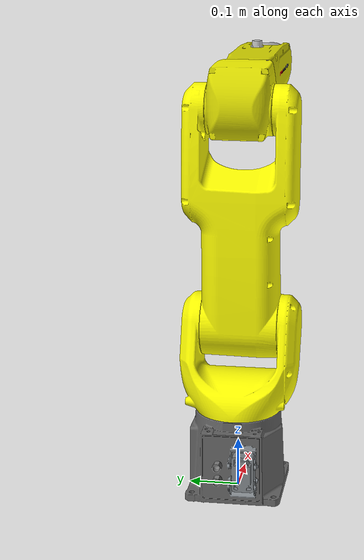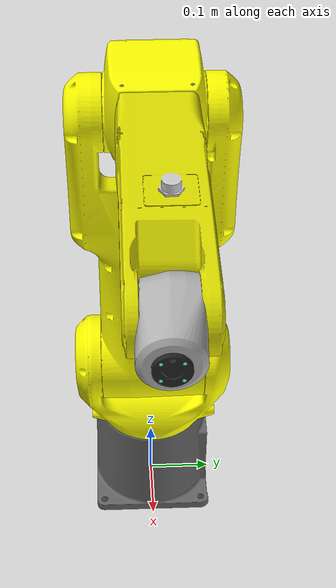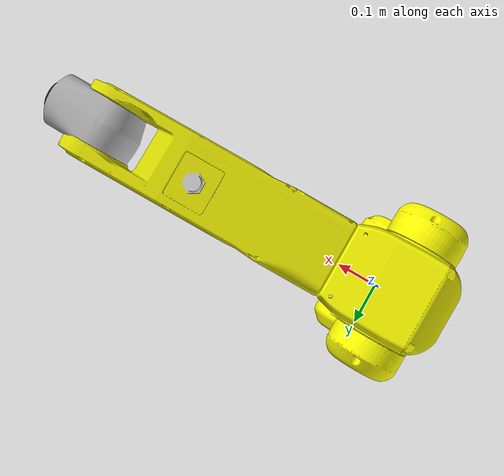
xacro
<?xml version="1.0" ?>
<robot name="lrmate200id7l" xmlns:xacro="http://wiki.ros.org/xacro">
  <xacro:include
    filename="$(find fanuc_lrmate_description)/urdf/lrmate200id7l_urdf_macro.xacro"
  />

  <link name="world" />
  <link name="ee_link" />
  <xacro:lrmate200id7l parent="world" child="ee_link">
    <origin xyz="0 0 0" rpy="0 0 0" />
  </xacro:lrmate200id7l>
</robot>

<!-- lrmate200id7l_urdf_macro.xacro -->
<!--
SPDX-FileCopyrightText: 2025-2026, FANUC America Corporation
SPDX-FileCopyrightText: 2025-2026, FANUC CORPORATION
SPDX-License-Identifier: Apache-2.0
-->
<!-- URDF for LR Mate/7-9D (LR Mate 200iD/7L) -->
<robot xmlns:xacro="http://wiki.ros.org/xacro">
  <xacro:macro
    name="lrmate200id7l"
    params="prefix=''
            parent
            *origin
            child"
  >

    <xacro:property name="j1_lower_limit" value="${radians(-180)}" />
    <xacro:property name="j2_lower_limit" value="${radians(-100)}" />
    <xacro:property name="j3_lower_limit" value="${radians(-70)}" />
    <xacro:property name="j4_lower_limit" value="${radians(-190)}" />
    <xacro:property name="j5_lower_limit" value="${radians(-125)}" />
    <xacro:property name="j6_lower_limit" value="${radians(-360)}" />

    <xacro:property name="j1_upper_limit" value="${radians(180)}" />
    <xacro:property name="j2_upper_limit" value="${radians(145)}" />
    <xacro:property name="j3_upper_limit" value="${radians(213)}" />
    <xacro:property name="j4_upper_limit" value="${radians(190)}" />
    <xacro:property name="j5_upper_limit" value="${radians(125)}" />
    <xacro:property name="j6_upper_limit" value="${radians(360)}" />

    <xacro:property name="j1_effort_limit" value="600" />
    <xacro:property name="j2_effort_limit" value="600" />
    <xacro:property name="j3_effort_limit" value="300" />
    <xacro:property name="j4_effort_limit" value="70" />
    <xacro:property name="j5_effort_limit" value="40" />
    <xacro:property name="j6_effort_limit" value="20" />

    <xacro:property name="j1_velocity_limit" value="${radians(370)}" />
    <xacro:property name="j2_velocity_limit" value="${radians(310)}" />
    <xacro:property name="j3_velocity_limit" value="${radians(410)}" />
    <xacro:property name="j4_velocity_limit" value="${radians(550)}" />
    <xacro:property name="j5_velocity_limit" value="${radians(545)}" />
    <xacro:property name="j6_velocity_limit" value="${radians(1000)}" />

    <!-- links -->
    <link name="${prefix}base_link">
      <visual>
        <origin xyz="0 0 0" rpy="0 0 0" />
        <geometry>
          <mesh
            filename="package://fanuc_lrmate_description/meshes/lrmate200id7l/visual/base.dae"
          />
        </geometry>
      </visual>
      <collision>
        <origin xyz="0 0 0" rpy="0 0 0" />
        <geometry>
          <mesh
            filename="package://fanuc_lrmate_description/meshes/lrmate200id7l/collision/base.stl"
          />
        </geometry>
      </collision>
      <inertial>
        <mass value=" 5.09" />
        <origin xyz="-.0146 -.000342  .0796" />
        <inertia
          ixx=" .0241"
          ixy="-.000552"
          ixz=" .000285"
          iyy=" .0294"
          iyz="-.000117"
          izz=" .0309"
        />
      </inertial>
    </link>

    <link name="${prefix}J1_link">
      <visual>
        <origin xyz="0 0 0" rpy="0 0 0" />
        <geometry>
          <mesh
            filename="package://fanuc_lrmate_description/meshes/lrmate200id7l/visual/j1.dae"
          />
        </geometry>
      </visual>
      <collision>
        <origin xyz="0 0 0" rpy="0 0 0" />
        <geometry>
          <mesh
            filename="package://fanuc_lrmate_description/meshes/lrmate200id7l/collision/j1.stl"
          />
        </geometry>
      </collision>
      <inertial>
        <mass value=" 5.41" />
        <origin xyz=" .0287  .000102 -.0547" />
        <inertia
          ixx=" .0401"
          ixy=" .0000229"
          ixz="-.0053"
          iyy=" .0291"
          iyz=" .000117"
          izz=" .031"
        />
      </inertial>
    </link>

    <link name="${prefix}J2_link">
      <visual>
        <origin xyz="0 0 0" rpy="0 0 0" />
        <geometry>
          <mesh
            filename="package://fanuc_lrmate_description/meshes/lrmate200id7l/visual/j2.dae"
          />
        </geometry>
      </visual>
      <collision>
        <origin xyz="0 0 0" rpy="0 0 0" />
        <geometry>
          <mesh
            filename="package://fanuc_lrmate_description/meshes/lrmate200id7l/collision/j2.stl"
          />
        </geometry>
      </collision>
      <inertial>
        <mass value=" 10.9" />
        <origin xyz="-.00311 -.00124  .217" />
        <inertia
          ixx=" .28"
          ixy=" .0000324"
          ixz=" .000718"
          iyy=" .255"
          iyz="-.00195"
          izz=" .0511"
        />
      </inertial>
    </link>

    <link name="${prefix}J3_link">
      <visual>
        <origin xyz="0 0 0" rpy="0 0 0" />
        <geometry>
          <mesh
            filename="package://fanuc_lrmate_description/meshes/lrmate200id7l/visual/j3.dae"
          />
        </geometry>
      </visual>
      <collision>
        <origin xyz="0 0 0" rpy="0 0 0" />
        <geometry>
          <mesh
            filename="package://fanuc_lrmate_description/meshes/lrmate200id7l/collision/j3.stl"
          />
        </geometry>
      </collision>
      <inertial>
        <mass value=" 2.07" />
        <origin xyz=" .00887 -.0000626  .0171" />
        <inertia
          ixx=" .00562"
          ixy="-.0000442"
          ixz="-.000598"
          iyy=" .0064"
          iyz="-.0000443"
          izz=" .00643"
        />
      </inertial>
    </link>

    <link name="${prefix}J4_link">
      <visual>
        <origin xyz="0 0 0" rpy="0 0 0" />
        <geometry>
          <mesh
            filename="package://fanuc_lrmate_description/meshes/lrmate200id7l/visual/j4.dae"
          />
        </geometry>
      </visual>
      <collision>
        <origin xyz="0 0 0" rpy="0 0 0" />
        <geometry>
          <mesh
            filename="package://fanuc_lrmate_description/meshes/lrmate200id7l/collision/j4.stl"
          />
        </geometry>
      </collision>
      <inertial>
        <mass value=" 3.07" />
        <origin xyz=" .266  .00354  .00226" />
        <inertia
          ixx=" .00511"
          ixy="-.00000922"
          ixz=" .0000312"
          iyy=" .0347"
          iyz="-.0000096"
          izz=" .0346"
        />
      </inertial>
    </link>

    <link name="${prefix}J5_link">
      <visual>
        <origin xyz="0 0 0" rpy="0 0 0" />
        <geometry>
          <mesh
            filename="package://fanuc_lrmate_description/meshes/lrmate200id7l/visual/j5.dae"
          />
        </geometry>
      </visual>
      <collision>
        <origin xyz="0 0 0" rpy="0 0 0" />
        <geometry>
          <mesh
            filename="package://fanuc_lrmate_description/meshes/lrmate200id7l/collision/j5.stl"
          />
        </geometry>
      </collision>
      <inertial>
        <mass value=" .428" />
        <origin xyz=" .0177  .0025 -.00000419" />
        <inertia
          ixx=" .000326"
          ixy=" .0000179"
          ixz="-.0000000201"
          iyy=" .000578"
          iyz="-.0000000165"
          izz=" .000542"
        />
      </inertial>
    </link>

    <link name="${prefix}J6_link">
      <visual>
        <origin xyz="0 0 0" rpy="0 0 0" />
        <geometry>
          <mesh
            filename="package://fanuc_lrmate_description/meshes/lrmate200id7l/visual/j6.dae"
          />
        </geometry>
      </visual>
      <collision>
        <origin xyz="0 0 0" rpy="0 0 0" />
        <geometry>
          <mesh
            filename="package://fanuc_lrmate_description/meshes/lrmate200id7l/collision/j6.stl"
          />
        </geometry>
      </collision>
      <inertial>
        <mass value=" .0129" />
        <origin xyz=" .074  3.35E-18 -4.88E-19" />
        <inertia
          ixx=" .00000264"
          ixy=" 6.82E-21"
          ixz="-4.09E-22"
          iyy=" .00000148"
          iyz="-1.01E-22"
          izz=" .00000148"
        />
      </inertial>
    </link>

    <!-- joints -->
    <joint name="${prefix}J1" type="revolute">
      <origin xyz=" 0  0  .33" rpy="0 0 0" />
      <parent link="${prefix}base_link" />
      <child link="${prefix}J1_link" />
      <axis xyz=" 0  0  1" />
      <limit
        lower="${j1_lower_limit}"
        upper="${j1_upper_limit}"
        effort="${j1_effort_limit}"
        velocity="${j1_velocity_limit}"
      />
    </joint>

    <joint name="${prefix}J2" type="revolute">
      <origin xyz=" .05  0  0" rpy="0 0 0" />
      <parent link="${prefix}J1_link" />
      <child link="${prefix}J2_link" />
      <axis xyz=" 0  1  0" />
      <limit
        lower="${j2_lower_limit}"
        upper="${j2_upper_limit}"
        effort="${j2_effort_limit}"
        velocity="${j2_velocity_limit}"
      />
    </joint>

    <joint name="${prefix}J3" type="revolute">
      <origin xyz=" 0  0  .44" rpy="0 0 0" />
      <parent link="${prefix}J2_link" />
      <child link="${prefix}J3_link" />
      <axis xyz=" 0 -1  0" />
      <limit
        lower="${j3_lower_limit}"
        upper="${j3_upper_limit}"
        effort="${j3_effort_limit}"
        velocity="${j3_velocity_limit}"
      />
    </joint>

    <joint name="${prefix}J4" type="revolute">
      <origin xyz=" 0  0  .035" rpy="0 0 0" />
      <parent link="${prefix}J3_link" />
      <child link="${prefix}J4_link" />
      <axis xyz="-1  0  0" />
      <limit
        lower="${j4_lower_limit}"
        upper="${j4_upper_limit}"
        effort="${j4_effort_limit}"
        velocity="${j4_velocity_limit}"
      />
    </joint>

    <joint name="${prefix}J5" type="revolute">
      <origin xyz=" .42  0  0" rpy="0 0 0" />
      <parent link="${prefix}J4_link" />
      <child link="${prefix}J5_link" />
      <axis xyz=" 0 -1  0" />
      <limit
        lower="${j5_lower_limit}"
        upper="${j5_upper_limit}"
        effort="${j5_effort_limit}"
        velocity="${j5_velocity_limit}"
      />
    </joint>

    <joint name="${prefix}J6" type="revolute">
      <origin xyz=" 0  0  0" rpy="0 0 0" />
      <parent link="${prefix}J5_link" />
      <child link="${prefix}J6_link" />
      <axis xyz="-1  0  0" />
      <limit
        lower="${j6_lower_limit}"
        upper="${j6_upper_limit}"
        effort="${j6_effort_limit}"
        velocity="${j6_velocity_limit}"
      />
    </joint>

    <!-- world coords -->
    <link name="${prefix}wbase" />
    <joint name="${prefix}base_link-wbase" type="fixed">
      <origin xyz=" 0  0  .33" rpy="0 0 0" />
      <parent link="${prefix}base_link" />
      <child link="${prefix}wbase" />
    </joint>

    <!-- flange coords -->
    <link name="${prefix}flange" />
    <joint name="${prefix}J6-flange" type="fixed">
      <origin xyz=" .08  0  0" rpy="0 0 0" />
      <parent link="${prefix}J6_link" />
      <child link="${prefix}flange" />
    </joint>

    <!-- FANUC flange coords -->
    <link name="${prefix}fanuc_flange" />
    <joint name="${prefix}flange-fanuc_flange" type="fixed">
      <origin xyz="0 0 0" rpy="${radians( 180)} ${radians(-90)} ${radians( 0)}" />
      <parent link="${prefix}flange" />
      <child link="${prefix}fanuc_flange" />
    </joint>

    <!-- Attach to parent -->
    <joint name="${prefix}base_joint" type="fixed">
      <xacro:insert_block name="origin" />
      <parent link="${parent}" />
      <child link="${prefix}base_link" />
    </joint>

    <!-- Attach child -->
    <joint name="${prefix}child_joint" type="fixed">
      <origin xyz="0 0 0" rpy="0 0 0" />
      <parent link="${prefix}flange" />
      <child link="${child}" />
    </joint>
  </xacro:macro>
</robot>
